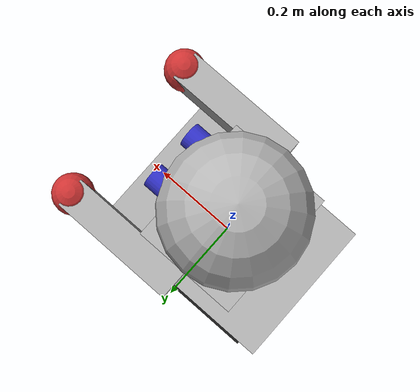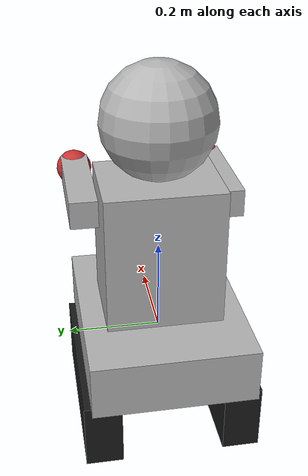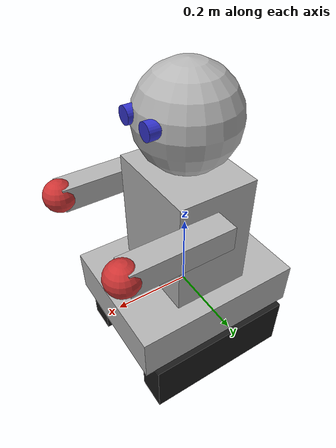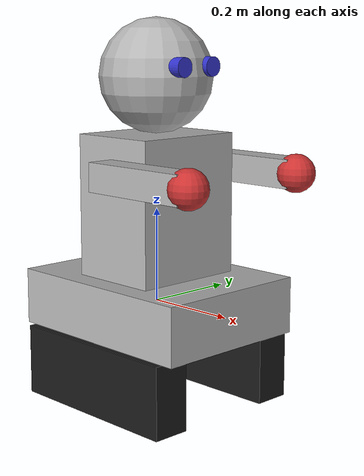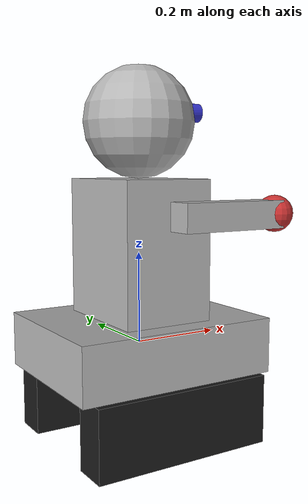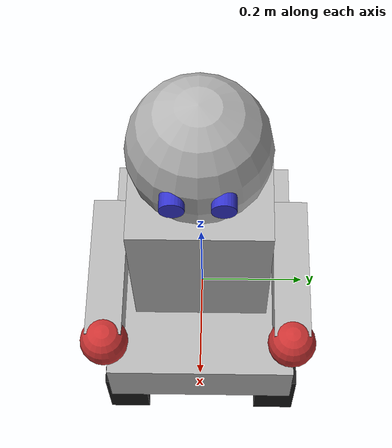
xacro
<?xml version="1.0"?>
<!-- filepath: /home/matt/johnny_ws/src/johnny_5_description/urdf/johnny_5.xacro -->
<robot name="johnny_5" xmlns:xacro="http://www.ros.org/wiki/xacro">

  <!-- Define some constants for Johnny 5's proportions -->
  <xacro:property name="base_width" value="0.35"/>
  <xacro:property name="base_length" value="0.45"/>
  <xacro:property name="base_height" value="0.12"/>

  <!-- Track dimensions -->
  <xacro:property name="track_width" value="0.08"/>
  <xacro:property name="track_length" value="0.40"/>
  <xacro:property name="track_height" value="0.15"/>
  <xacro:property name="track_separation" value="0.30"/>

  <!-- Upper body dimensions -->
  <xacro:property name="torso_width" value="0.25"/>
  <xacro:property name="torso_length" value="0.20"/>
  <xacro:property name="torso_height" value="0.30"/>

  <!-- Head dimensions -->
  <xacro:property name="head_radius" value="0.12"/>

  <!-- Arm dimensions -->
  <xacro:property name="arm_length" value="0.25"/>
  <xacro:property name="arm_radius" value="0.03"/>

  <!-- Define inertial property macros -->
  <xacro:macro name="box_inertia" params="m w h d">
    <inertial>
      <origin xyz="0 0 0" rpy="0 0 0"/>
      <mass value="${m}"/>
      <inertia ixx="${(m/12) * (h*h + d*d)}" ixy="0.0" ixz="0.0"
               iyy="${(m/12) * (w*w + d*d)}" iyz="0.0"
               izz="${(m/12) * (w*w + h*h)}"/>
    </inertial>
  </xacro:macro>

  <xacro:macro name="cylinder_inertia" params="m r h">
    <inertial>
      <origin xyz="0 0 0" rpy="0 0 0" />
      <mass value="${m}"/>
      <inertia ixx="${(m/12) * (3*r*r + h*h)}" ixy="0" ixz="0"
               iyy="${(m/12) * (3*r*r + h*h)}" iyz="0"
               izz="${(m/2) * (r*r)}"/>
    </inertial>
  </xacro:macro>

  <xacro:macro name="sphere_inertia" params="m r">
    <inertial>
      <mass value="${m}"/>
      <inertia ixx="${(2/5) * m * (r*r)}" ixy="0.0" ixz="0.0"
               iyy="${(2/5) * m * (r*r)}" iyz="0.0"
               izz="${(2/5) * m * (r*r)}"/>
    </inertial>
  </xacro:macro>

  <!-- Materials -->
  <material name="silver">
    <color rgba="0.7 0.7 0.7 1.0"/>
  </material>

  <material name="black">
    <color rgba="0.1 0.1 0.1 1.0"/>
  </material>

  <material name="blue">
    <color rgba="0.2 0.2 0.8 1.0"/>
  </material>

  <material name="red">
    <color rgba="0.8 0.2 0.2 1.0"/>
  </material>

  <!-- Robot base/chassis -->
  <link name="base_link">
    <visual>
      <geometry>
        <box size="${base_length} ${base_width} ${base_height}"/>
      </geometry>
      <material name="silver"/>
    </visual>
    <collision>
      <geometry>
        <box size="${base_length} ${base_width} ${base_height}"/>
      </geometry>
    </collision>
    <xacro:box_inertia m="20" w="${base_width}" d="${base_length}" h="${base_height}"/>
  </link>

  <!-- Robot Footprint -->
  <link name="base_footprint"/>

  <joint name="base_joint" type="fixed">
    <parent link="base_link"/>
    <child link="base_footprint"/>
    <origin xyz="0.0 0.0 ${-track_height/2}" rpy="0 0 0"/>
  </joint>

  <!-- Track macro -->
  <xacro:macro name="track" params="prefix y_reflect">
    <link name="${prefix}_track">
      <visual>
        <origin xyz="0 0 0" rpy="0 0 0"/>
        <geometry>
          <box size="${track_length} ${track_width} ${track_height}"/>
        </geometry>
        <material name="black"/>
      </visual>
      <collision>
        <origin xyz="0 0 0" rpy="0 0 0"/>
        <geometry>
          <box size="${track_length} ${track_width} ${track_height}"/>
        </geometry>
      </collision>
      <xacro:box_inertia m="5" w="${track_width}" d="${track_length}" h="${track_height}"/>
    </link>

    <joint name="${prefix}_track_joint" type="continuous">
      <parent link="base_link"/>
      <child link="${prefix}_track"/>
      <origin xyz="0 ${y_reflect*track_separation/2} ${-base_height/2-track_height/2}" rpy="0 0 0"/>
      <axis xyz="1 0 0"/>  <!-- Tracks move forward/backward -->
    </joint>
  </xacro:macro>

  <!-- Left and right tracks -->
  <xacro:track prefix="left" y_reflect="1" />
  <xacro:track prefix="right" y_reflect="-1" />

  <!-- Upper torso -->
  <link name="torso">
    <visual>
      <geometry>
        <box size="${torso_length} ${torso_width} ${torso_height}"/>
      </geometry>
      <material name="silver"/>
    </visual>
    <collision>
      <geometry>
        <box size="${torso_length} ${torso_width} ${torso_height}"/>
      </geometry>
    </collision>
    <xacro:box_inertia m="8" w="${torso_width}" d="${torso_length}" h="${torso_height}"/>
  </link>

  <joint name="torso_joint" type="revolute">
    <parent link="base_link"/>
    <child link="torso"/>
    <origin xyz="0 0 ${base_height/2 + torso_height/2}" rpy="0 0 0"/>
    <axis xyz="0 0 1"/>  <!-- Can rotate left/right -->
    <limit lower="${-pi}" upper="${pi}" effort="10" velocity="1"/>
  </joint>

  <!-- Head -->
  <link name="head">
    <visual>
      <geometry>
        <sphere radius="${head_radius}"/>
      </geometry>
      <material name="silver"/>
    </visual>
    <collision>
      <geometry>
        <sphere radius="${head_radius}"/>
      </geometry>
    </collision>
    <xacro:sphere_inertia m="2" r="${head_radius}"/>
  </link>

  <joint name="head_joint" type="revolute">
    <parent link="torso"/>
    <child link="head"/>
    <origin xyz="0 0 ${torso_height/2 + head_radius}" rpy="0 0 0"/>
    <axis xyz="0 0 1"/>  <!-- Head can turn -->
    <limit lower="${-pi}" upper="${pi}" effort="5" velocity="2"/>
  </joint>

  <!-- Eyes (cameras) -->
  <xacro:macro name="eye" params="prefix y_offset">
    <link name="${prefix}_eye">
      <visual>
        <geometry>
          <cylinder radius="0.02" length="0.03"/>
        </geometry>
        <material name="blue"/>
      </visual>
      <collision>
        <geometry>
          <cylinder radius="0.02" length="0.03"/>
        </geometry>
      </collision>
      <xacro:cylinder_inertia m="0.1" r="0.02" h="0.03"/>
    </link>

    <joint name="${prefix}_eye_joint" type="revolute">
      <parent link="head"/>
      <child link="${prefix}_eye"/>
      <origin xyz="${head_radius-0.01} ${y_offset} 0.02" rpy="0 ${pi/2} 0"/>
      <axis xyz="0 0 1"/>
      <limit lower="${-pi/4}" upper="${pi/4}" effort="1" velocity="1"/>
    </joint>
  </xacro:macro>

  <xacro:eye prefix="left" y_offset="0.04" />
  <xacro:eye prefix="right" y_offset="-0.04" />

  <!-- Arms -->
  <xacro:macro name="arm" params="prefix y_reflect">
    <link name="${prefix}_arm">
      <visual>
        <origin xyz="${arm_length/2} 0 0" rpy="0 0 0"/>
        <geometry>
          <box size="${arm_length} ${arm_radius*2} ${arm_radius*2}"/>
        </geometry>
        <material name="silver"/>
      </visual>
      <collision>
        <origin xyz="${arm_length/2} 0 0" rpy="0 0 0"/>
        <geometry>
          <box size="${arm_length} ${arm_radius*2} ${arm_radius*2}"/>
        </geometry>
      </collision>
      <xacro:box_inertia m="1" w="${arm_radius*2}" d="${arm_length}" h="${arm_radius*2}"/>
    </link>

    <joint name="${prefix}_arm_joint" type="revolute">
      <parent link="torso"/>
      <child link="${prefix}_arm"/>
      <origin xyz="0 ${y_reflect*(torso_width/2 + arm_radius)} ${torso_height/4}" rpy="0 0 0"/>
      <axis xyz="0 1 0"/>  <!-- Arms can move up/down -->
      <limit lower="${-pi/2}" upper="${pi/2}" effort="10" velocity="1"/>
    </joint>

    <!-- Hand/gripper -->
    <link name="${prefix}_hand">
      <visual>
        <geometry>
          <sphere radius="0.04"/>
        </geometry>
        <material name="red"/>
      </visual>
      <collision>
        <geometry>
          <sphere radius="0.04"/>
        </geometry>
      </collision>
      <xacro:sphere_inertia m="0.2" r="0.04"/>
    </link>

    <joint name="${prefix}_hand_joint" type="revolute">
      <parent link="${prefix}_arm"/>
      <child link="${prefix}_hand"/>
      <origin xyz="${arm_length} 0 0" rpy="0 0 0"/>
      <axis xyz="1 0 0"/>
      <limit lower="${-pi}" upper="${pi}" effort="2" velocity="2"/>
    </joint>
  </xacro:macro>

  <xacro:arm prefix="left" y_reflect="1" />
  <xacro:arm prefix="right" y_reflect="-1" />

</robot>
